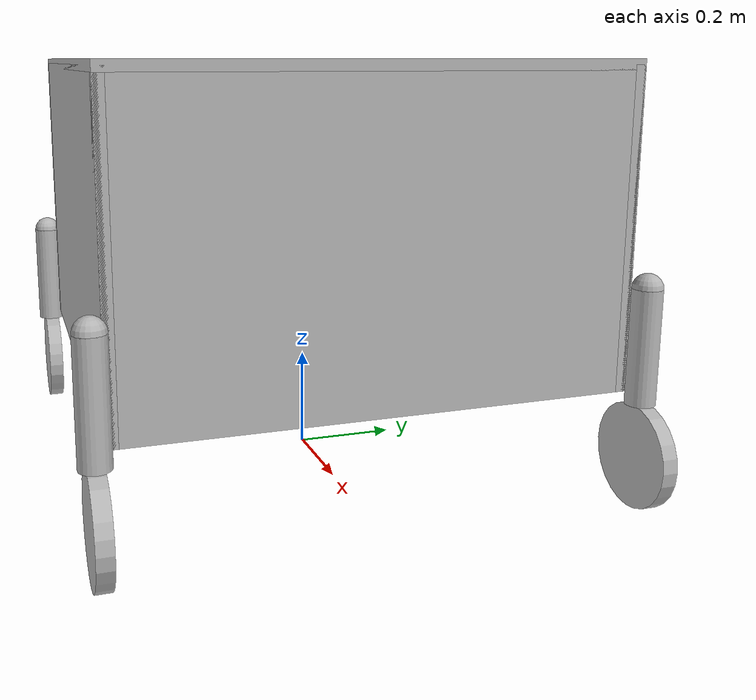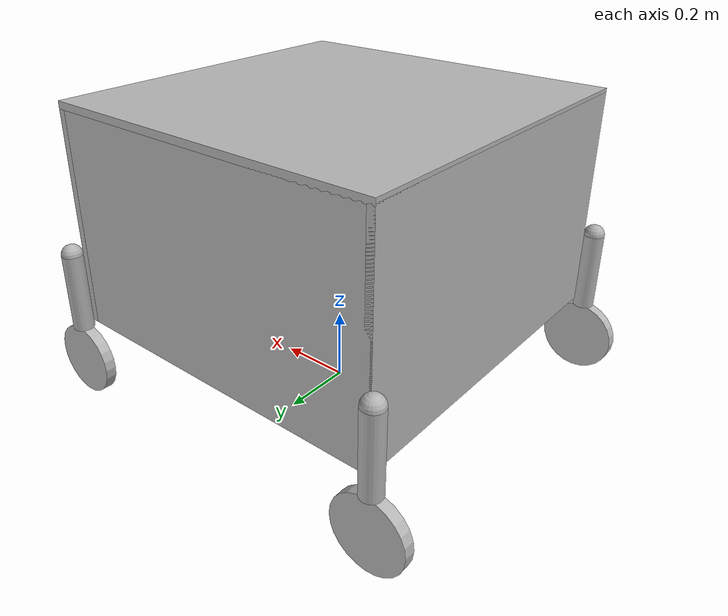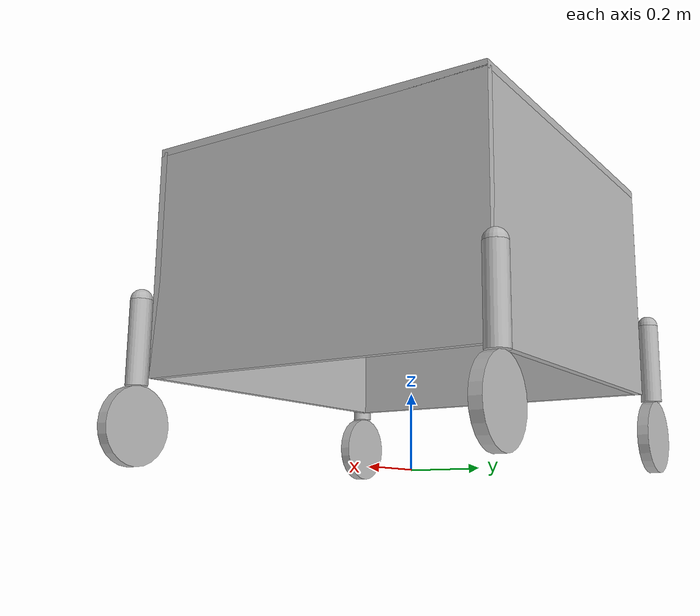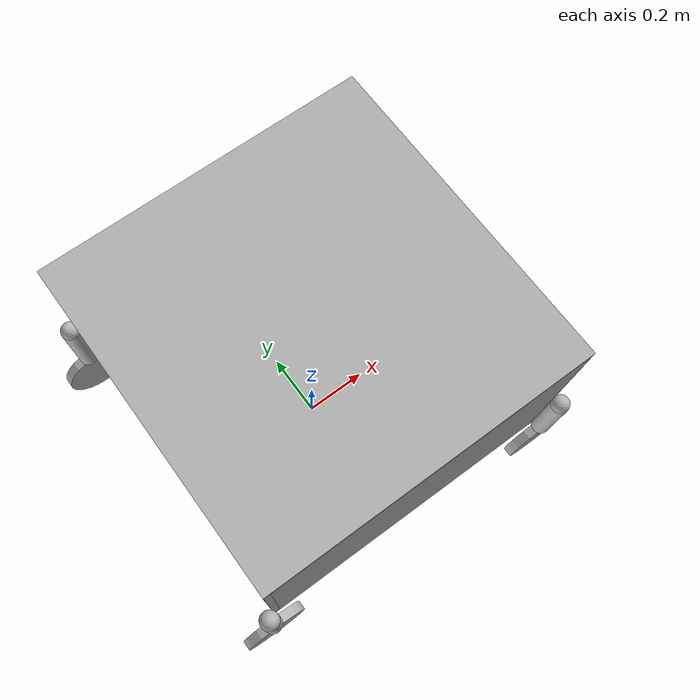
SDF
<?xml version="1.0"?>

<sdf version="1.4">
	<model name="my_robot">

		<link name="main_frame">
			<pose> 0 0 0.22 0 0 0 </pose>
			<!-- frame visual -->
			<visual name="frame_top_visual">
				<pose> 0 0 0.6 0 0 0 </pose>
				<geometry>
					<box>
						<size> 0.96 0.96 0.02 </size>
					</box>
				</geometry>
			</visual>
			<visual name="frame_front_visual">
				<pose> 0.47 0 0.3 0 0 0 </pose>
				<geometry>
					<box>
						<size> 0.02 0.96 0.6 </size>
					</box>
				</geometry>
			</visual>
			<visual name="frame_rear_visual">
				<pose> -0.47 0 0.3 0 0 0 </pose>
				<geometry>
					<box>
						<size> 0.02 0.96 0.6 </size>
					</box>
				</geometry>
			</visual>
			<visual name="frame_left_visual">
				<pose> 0 0.47 0.3 0 0 0 </pose>
				<geometry>
					<box>
						<size> 0.96 0.02 0.6 </size>
					</box>
				</geometry>
			</visual>
			<visual name="frame_right_visual">
				<pose> 0 -0.47 0.3 0 0 0 </pose>
				<geometry>
					<box>
						<size> 0.96 0.02 0.6 </size>
					</box>
				</geometry>
			</visual>

			<!-- frame collision -->
			<collision name="frame_top_collision">
				<pose> 0 0 0.6 0 0 0 </pose>
				<geometry>
					<box>
						<size> 0.96 0.96 0.02 </size>
					</box>
				</geometry>
			</collision>
			<collision name="frame_front_collision">
				<pose> 0.47 0 0.3 0 0 0 </pose>
				<geometry>
					<box>
						<size> 0.02 0.96 0.6 </size>
					</box>
				</geometry>
			</collision>
			<collision name="frame_rear_collision">
				<pose> -0.47 0 0.3 0 0 0 </pose>
				<geometry>
					<box>
						<size> 0.02 0.96 0.6 </size>
					</box>
				</geometry>
			</collision>
			<collision name="frame_left_collision">
				<pose> 0 0.47 0.3 0 0 0 </pose>
				<geometry>
					<box>
						<size> 0.96 0.02 0.6 </size>
					</box>
				</geometry>
			</collision>
			<collision name="frame_right_collision">
				<pose> 0 -0.47 0.3 0 0 0 </pose>
				<geometry>
					<box>
						<size> 0.96 0.02 0.6 </size>
					</box>
				</geometry>
			</collision>
		</link>

		<!-- wheel lf -->

		<link name="wheel_frame_lf">
			<pose> 0.5 0.5 0.31 0 0 0 </pose>
			<visual name="wheel_frame_visual">
				<geometry>
					<cylinder>
						<radius> 0.02828 </radius>
						<length> 0.22 </length>
					</cylinder>
				</geometry>
			</visual>
			<collision name="wheel_frame_collision">
				<geometry>
					<cylinder>
						<radius> 0.02828 </radius>
						<length> 0.22 </length>
					</cylinder>
				</geometry>
			</collision>
			<visual name="wheel_cap_visaul">
				<pose> 0 0 0.11 0 0 0 </pose>
				<geometry>
					<sphere>
						<radius> 0.02828 </radius>
					</sphere>
				</geometry>
			</visual>
			<collision name="wheel_cap_collision">
				<pose> 0 0 0.11 0 0 0 </pose>
				<geometry>
					<sphere>
						<radius> 0.02828 </radius>
					</sphere>
				</geometry>
			</collision>
		</link>
		<joint name="rotate_lf" type="revolute">
			<parent> main_frame </parent>
			<child> wheel_frame_lf </child>
			<axis>
				<xyz> 0 0 1 </xyz>
				<dynamics>
					<damping> 100 </damping>
					<friction> 200 </friction>
				</dynamics>
				<limit>
					<lower> 0.0 </lower>
					<upper> 1.5707 </upper>
				</limit>
			</axis>
		</joint>
		<link name="wheel_lf">
			<pose> 0.5 0.5 0.1 0 0 0 </pose>
			<visual name="wheel_visual">
				<pose> 0 0 0 1.5707 0 0 </pose>
				<geometry>
					<cylinder>
						<radius> 0.1 </radius>
						<length> 0.03 </length>
					</cylinder>
				</geometry>
			</visual>
			<collision name="wheel_collision">
				<pose> 0 0 0 1.5707 0 0 </pose>
				<geometry>
					<cylinder>
						<radius> 0.1 </radius>
						<length> 0.03 </length>
					</cylinder>
				</geometry>
			</collision>
		</link>
		<joint name="drive_lf" type="revolute">
			<parent> wheel_frame_lf </parent>
			<child> wheel_lf </child>
			<axis>
				<xyz> 0 1 0 </xyz>
			</axis>
		</joint>

		<!-- wheel lr -->

		<link name="wheel_frame_lr">
			<pose> -0.5 0.5 0.31 0 0 0 </pose>
			<visual name="wheel_frame_visual">
				<geometry>
					<cylinder>
						<radius> 0.02828 </radius>
						<length> 0.22 </length>
					</cylinder>
				</geometry>
			</visual>
			<collision name="wheel_frame_collision">
				<geometry>
					<cylinder>
						<radius> 0.02828 </radius>
						<length> 0.22 </length>
					</cylinder>
				</geometry>
			</collision>
			<visual name="wheel_cap_visaul">
				<pose> 0 0 0.11 0 0 0 </pose>
				<geometry>
					<sphere>
						<radius> 0.02828 </radius>
					</sphere>
				</geometry>
			</visual>
			<collision name="wheel_cap_collision">
				<pose> 0 0 0.11 0 0 0 </pose>
				<geometry>
					<sphere>
						<radius> 0.02828 </radius>
					</sphere>
				</geometry>
			</collision>
		</link>
		<joint name="rotate_lr" type="revolute">
			<parent> main_frame </parent>
			<child> wheel_frame_lr </child>
			<axis>
				<xyz> 0 0 1 </xyz>
				<dynamics>
					<damping> 100 </damping>
					<friction> 200 </friction>
				</dynamics>
				<limit>
					<lower> 0.0 </lower>
					<upper> 1.5707 </upper>
				</limit>
			</axis>
		</joint>
		<link name="wheel_lr">
			<pose> -0.5 0.5 0.1 0 0 0 </pose>
			<visual name="wheel_visual">
				<pose> 0 0 0 1.5707 0 0 </pose>
				<geometry>
					<cylinder>
						<radius> 0.1 </radius>
						<length> 0.03 </length>
					</cylinder>
				</geometry>
			</visual>
			<collision name="wheel_collision">
				<pose> 0 0 0 1.5707 0 0 </pose>
				<geometry>
					<cylinder>
						<radius> 0.1 </radius>
						<length> 0.03 </length>
					</cylinder>
				</geometry>
			</collision>
		</link>
		<joint name="drive_lr" type="revolute">
			<parent> wheel_frame_lr </parent>
			<child> wheel_lr </child>
			<axis>
				<xyz> 0 1 0 </xyz>
			</axis>
		</joint>

		<!-- wheel rf -->

		<link name="wheel_frame_rf">
			<pose> 0.5 -0.5 0.31 0 0 0 </pose>
			<visual name="wheel_frame_visual">
				<geometry>
					<cylinder>
						<radius> 0.02828 </radius>
						<length> 0.22 </length>
					</cylinder>
				</geometry>
			</visual>
			<collision name="wheel_frame_collision">
				<geometry>
					<cylinder>
						<radius> 0.02828 </radius>
						<length> 0.22 </length>
					</cylinder>
				</geometry>
			</collision>
			<visual name="wheel_cap_visaul">
				<pose> 0 0 0.11 0 0 0 </pose>
				<geometry>
					<sphere>
						<radius> 0.02828 </radius>
					</sphere>
				</geometry>
			</visual>
			<collision name="wheel_cap_collision">
				<pose> 0 0 0.11 0 0 0 </pose>
				<geometry>
					<sphere>
						<radius> 0.02828 </radius>
					</sphere>
				</geometry>
			</collision>
		</link>
		<joint name="rotate_rf" type="revolute">
			<parent> main_frame </parent>
			<child> wheel_frame_rf </child>
			<axis>
				<xyz> 0 0 1 </xyz>
				<dynamics>
					<damping> 100 </damping>
					<friction> 200 </friction>
				</dynamics>
				<limit>
					<lower> 0.0 </lower>
					<upper> 1.5707 </upper>
				</limit>
			</axis>
		</joint>
		<link name="wheel_rf">
			<pose> 0.5 -0.5 0.1 0 0 0 </pose>
			<visual name="wheel_visual">
				<pose> 0 0 0 1.5707 0 0 </pose>
				<geometry>
					<cylinder>
						<radius> 0.1 </radius>
						<length> 0.03 </length>
					</cylinder>
				</geometry>
			</visual>
			<collision name="wheel_collision">
				<pose> 0 0 0 1.5707 0 0 </pose>
				<geometry>
					<cylinder>
						<radius> 0.1 </radius>
						<length> 0.03 </length>
					</cylinder>
				</geometry>
			</collision>
		</link>
		<joint name="drive_rf" type="revolute">
			<parent> wheel_frame_rf </parent>
			<child> wheel_rf </child>
			<axis>
				<xyz> 0 1 0 </xyz>
			</axis>
		</joint>

		<!-- wheel rr -->

		<link name="wheel_frame_rr">
			<pose> -0.5 -0.5 0.31 0 0 0 </pose>
			<visual name="wheel_frame_visual">
				<geometry>
					<cylinder>
						<radius> 0.02828 </radius>
						<length> 0.22 </length>
					</cylinder>
				</geometry>
			</visual>
			<collision name="wheel_frame_collision">
				<geometry>
					<cylinder>
						<radius> 0.02828 </radius>
						<length> 0.22 </length>
					</cylinder>
				</geometry>
			</collision>
			<visual name="wheel_cap_visaul">
				<pose> 0 0 0.11 0 0 0 </pose>
				<geometry>
					<sphere>
						<radius> 0.02828 </radius>
					</sphere>
				</geometry>
			</visual>
			<collision name="wheel_cap_collision">
				<pose> 0 0 0.11 0 0 0 </pose>
				<geometry>
					<sphere>
						<radius> 0.02828 </radius>
					</sphere>
				</geometry>
			</collision>
		</link>
		<joint name="rotate_rr" type="revolute">
			<parent> main_frame </parent>
			<child> wheel_frame_rr </child>
			<axis>
				<xyz> 0 0 1 </xyz>
				<dynamics>
					<damping> 100 </damping>
					<friction> 200 </friction>
				</dynamics>
				<limit>
					<lower> 0.0 </lower>
					<upper> 1.5707 </upper>
				</limit>
			</axis>
		</joint>
		<link name="wheel_rr">
			<pose> -0.5 -0.5 0.1 0 0 0 </pose>
			<visual name="wheel_visual">
				<pose> 0 0 0 1.5707 0 0 </pose>
				<geometry>
					<cylinder>
						<radius> 0.1 </radius>
						<length> 0.03 </length>
					</cylinder>
				</geometry>
			</visual>
			<collision name="wheel_collision">
				<pose> 0 0 0 1.5707 0 0 </pose>
				<geometry>
					<cylinder>
						<radius> 0.1 </radius>
						<length> 0.03 </length>
					</cylinder>
				</geometry>
			</collision>
		</link>
		<joint name="drive_rr" type="revolute">
			<parent> wheel_frame_rr </parent>
			<child> wheel_rr </child>
			<axis>
				<xyz> 0 1 0 </xyz>
			</axis>
		</joint>

	</model>
</sdf>
